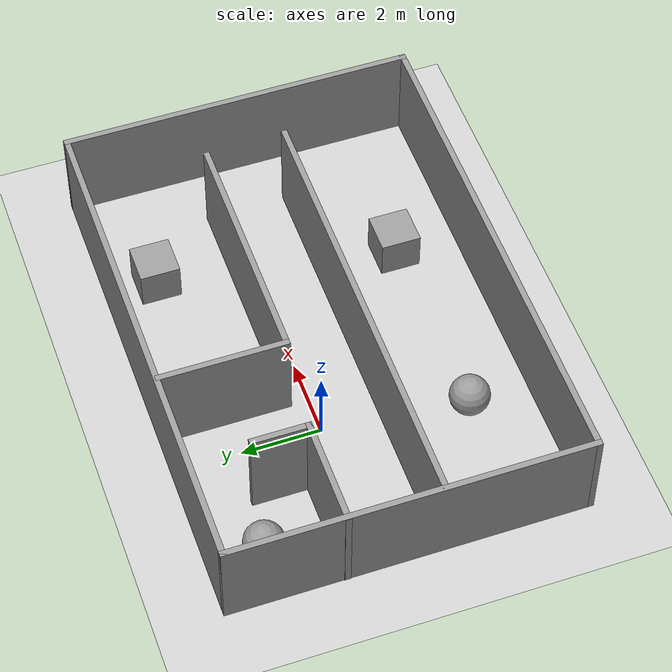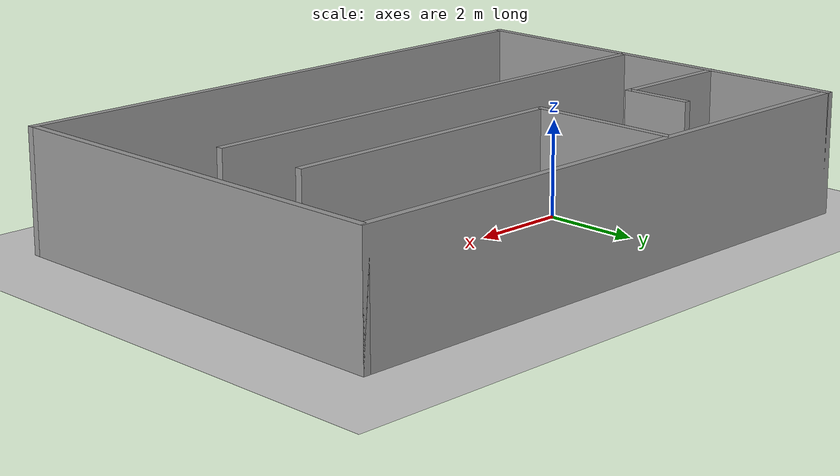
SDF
<sdf version="1.7">
 <world name="default">
  <light name="sun" type="directional">
   <pose>0 0 10 0 -0 0</pose>
   <diffuse>0.8 0.8 0.8 1</diffuse>
   <specular>0.2 0.2 0.2 1</specular>
   <attenuation>
    <range>1000</range>
    <constant>0.9</constant>
    <linear>0.01</linear>
    <quadratic>0.001</quadratic>
   </attenuation>
   <direction>-0.5 0.1 -0.9</direction>
   <spot><inner_angle>0</inner_angle><outer_angle>0</outer_angle><falloff>0</falloff></spot>
  </light>
  <model name="ground_plane">
   <static>1</static>
   <link name="link">
    <collision name="collision">
     <geometry><plane><normal>0 0 1</normal><size>100 100</size></plane></geometry>
     <surface>
      <contact><collide_bitmask>65535</collide_bitmask></contact>
      <friction><ode><mu>100</mu><mu2>50</mu2></ode></friction>
     </surface>
    </collision>
    <visual name="visual">
     <cast_shadows>0</cast_shadows>
     <geometry><plane><normal>0 0 1</normal><size>100 100</size></plane></geometry>
     <material>
      <script><uri>file://media/materials/scripts/gazebo.material</uri><name>Gazebo/Grey</name></script>
     </material>
    </visual>
   </link>
  </model>
  <gravity>0 0 -9.8</gravity>
  <magnetic_field>6e-06 2.3e-05 -4.2e-05</magnetic_field>
  <atmosphere type="adiabatic"/>
  <physics type="ode">
   <max_step_size>0.001</max_step_size>
   <real_time_factor>1</real_time_factor>
   <real_time_update_rate>1000</real_time_update_rate>
  </physics>
  <scene><ambient>0.4 0.4 0.4 1</ambient><background>0.7 0.7 0.7 1</background><shadows>1</shadows></scene>
  <audio><device>default</device></audio>
  <spherical_coordinates>
   <surface_model>EARTH_WGS84</surface_model>
   <latitude_deg>0</latitude_deg>
   <longitude_deg>0</longitude_deg>
   <elevation>0</elevation>
   <heading_deg>0</heading_deg>
  </spherical_coordinates>
  <model name="room">
   <pose>2.30418 -0.768589 0 0 -0 0</pose>
   <link name="Wall_1">
    <collision name="Wall_1_Collision">
     <geometry><box><size>9 0.15 2.5</size></box></geometry>
     <pose>0 0 1.25 0 -0 0</pose>
    </collision>
    <visual name="Wall_1_Visual">
     <pose>0 0 1.25 0 -0 0</pose>
     <geometry><box><size>9 0.15 2.5</size></box></geometry>
     <material>
      <script><uri>file://media/materials/scripts/gazebo.material</uri><name>Gazebo/Grey</name></script>
      <ambient>1 1 1 1</ambient>
     </material>
     <meta><layer>0</layer></meta>
    </visual>
    <pose>-6.29407 -0 0 0 -0 1.5708</pose>
   </link>
   <link name="Wall_11">
    <collision name="Wall_11_Collision">
     <geometry><box><size>3.25 0.15 2.5</size></box></geometry>
     <pose>0 0 1.25 0 -0 0</pose>
    </collision>
    <visual name="Wall_11_Visual">
     <pose>0 0 1.25 0 -0 0</pose>
     <geometry><box><size>3.25 0.15 2.5</size></box></geometry>
     <material>
      <script><uri>file://media/materials/scripts/gazebo.material</uri><name>Gazebo/Grey</name></script>
      <ambient>1 1 1 1</ambient>
     </material>
     <meta><layer>0</layer></meta>
    </visual>
    <pose>-1.32989 2.82962 0 0 -0 -1.5708</pose>
   </link>
   <link name="Wall_12">
    <collision name="Wall_12_Collision">
     <geometry><box><size>6.25 0.15 2.5</size></box></geometry>
     <pose>0 0 1.25 0 -0 0</pose>
    </collision>
    <visual name="Wall_12_Visual">
     <pose>0 0 1.25 0 -0 0</pose>
     <geometry><box><size>6.25 0.15 2.5</size></box></geometry>
     <material>
      <script><uri>file://media/materials/scripts/gazebo.material</uri><name>Gazebo/Grey</name></script>
      <ambient>1 1 1 1</ambient>
     </material>
     <meta><layer>0</layer></meta>
    </visual>
    <pose>1.72011 1.27962 0 0 -0 0</pose>
   </link>
   <link name="Wall_2">
    <collision name="Wall_2_Collision">
     <geometry><box><size>12.75 0.15 2.5</size></box></geometry>
     <pose>0 0 1.25 0 -0 0</pose>
    </collision>
    <visual name="Wall_2_Visual">
     <pose>0 0 1.25 0 -0 0</pose>
     <geometry><box><size>12.75 0.15 2.5</size></box></geometry>
     <material>
      <script><uri>file://media/materials/scripts/gazebo.material</uri><name>Gazebo/Grey</name></script>
      <ambient>1 1 1 1</ambient>
     </material>
     <meta><layer>0</layer></meta>
    </visual>
    <pose>0.005929 4.425 0 0 -0 0</pose>
   </link>
   <link name="Wall_3">
    <collision name="Wall_3_Collision">
     <geometry><box><size>9 0.15 2.5</size></box></geometry>
     <pose>0 0 1.25 0 -0 0</pose>
    </collision>
    <visual name="Wall_3_Visual">
     <pose>0 0 1.25 0 -0 0</pose>
     <geometry><box><size>9 0.15 2.5</size></box></geometry>
     <material>
      <script><uri>file://media/materials/scripts/gazebo.material</uri><name>Gazebo/Grey</name></script>
      <ambient>1 1 1 1</ambient>
     </material>
     <meta><layer>0</layer></meta>
    </visual>
    <pose>6.30593 -0 0 0 -0 -1.5708</pose>
   </link>
   <link name="Wall_4">
    <collision name="Wall_4_Collision">
     <geometry><box><size>12.75 0.15 2.5</size></box></geometry>
     <pose>0 0 1.25 0 -0 0</pose>
    </collision>
    <visual name="Wall_4_Visual">
     <pose>0 0 1.25 0 -0 0</pose>
     <geometry><box><size>12.75 0.15 2.5</size></box></geometry>
     <material>
      <script><uri>file://media/materials/scripts/gazebo.material</uri><name>Gazebo/Grey</name></script>
      <ambient>1 1 1 1</ambient>
     </material>
     <meta><layer>0</layer></meta>
    </visual>
    <pose>0.005929 -4.425 0 0 -0 3.14159</pose>
   </link>
   <link name="Wall_6">
    <collision name="Wall_6_Collision">
     <geometry><box><size>2.75 0.15 2.5</size></box></geometry>
     <pose>0 0 1.25 0 -0 0</pose>
    </collision>
    <visual name="Wall_6_Visual">
     <pose>0 0 1.25 0 -0 0</pose>
     <geometry><box><size>2.75 0.15 2.5</size></box></geometry>
     <material>
      <script><uri>file://media/materials/scripts/gazebo.material</uri><name>Gazebo/Grey</name></script>
      <ambient>1 1 1 1</ambient>
     </material>
     <meta><layer>0</layer></meta>
    </visual>
    <pose>-5.00593 1.54773 0 0 -0 0</pose>
   </link>
   <link name="Wall_7">
    <collision name="Wall_7_Collision">
     <geometry><box><size>1.5 0.15 2.5</size></box></geometry>
     <pose>0 0 1.25 0 -0 0</pose>
    </collision>
    <visual name="Wall_7_Visual">
     <pose>0 0 1.25 0 -0 0</pose>
     <geometry><box><size>1.5 0.15 2.5</size></box></geometry>
     <material>
      <script><uri>file://media/materials/scripts/gazebo.material</uri><name>Gazebo/Grey</name></script>
      <ambient>1 1 1 1</ambient>
     </material>
     <meta><layer>0</layer></meta>
    </visual>
    <pose>-3.70593 2.22273 0 0 -0 1.5708</pose>
   </link>
   <link name="Wall_9">
    <collision name="Wall_9_Collision">
     <geometry><box><size>11.25 0.15 2.5</size></box></geometry>
     <pose>0 0 1.25 0 -0 0</pose>
    </collision>
    <visual name="Wall_9_Visual">
     <pose>0 0 1.25 0 -0 0</pose>
     <geometry><box><size>11.25 0.15 2.5</size></box></geometry>
     <material>
      <script><uri>file://media/materials/scripts/gazebo.material</uri><name>Gazebo/Grey</name></script>
      <ambient>1 1 1 1</ambient>
     </material>
     <meta><layer>0</layer></meta>
    </visual>
    <pose>-0.715474 -0.758235 0 0 -0 0</pose>
   </link>
   <static>1</static>
  </model>
  <model name="unit_box">
   <pose>5.5246 2.41304 0.5 0 -0 0</pose>
   <link name="link">
    <inertial>
     <mass>1</mass>
     <inertia>
      <ixx>0.166667</ixx>
      <ixy>0</ixy>
      <ixz>0</ixz>
      <iyy>0.166667</iyy>
      <iyz>0</iyz>
      <izz>0.166667</izz>
     </inertia>
    </inertial>
    <collision name="collision"><geometry><box><size>1 1 1</size></box></geometry></collision>
    <visual name="visual">
     <geometry><box><size>1 1 1</size></box></geometry>
     <material>
      <script><name>Gazebo/Grey</name><uri>file://media/materials/scripts/gazebo.material</uri></script>
     </material>
    </visual>
   </link>
  </model>
  <model name="unit_box_0">
   <pose>4.50858 -3.49256 0.5 0 -0 0</pose>
   <link name="link">
    <inertial>
     <mass>1</mass>
     <inertia>
      <ixx>0.166667</ixx>
      <ixy>0</ixy>
      <ixz>0</ixz>
      <iyy>0.166667</iyy>
      <iyz>0</iyz>
      <izz>0.166667</izz>
     </inertia>
    </inertial>
    <collision name="collision"><geometry><box><size>1 1 1</size></box></geometry></collision>
    <visual name="visual">
     <geometry><box><size>1 1 1</size></box></geometry>
     <material>
      <script><name>Gazebo/Grey</name><uri>file://media/materials/scripts/gazebo.material</uri></script>
     </material>
    </visual>
   </link>
  </model>
  <model name="unit_sphere">
   <pose>-2.79405 2.34954 0.5 0 -0 0</pose>
   <link name="link">
    <inertial>
     <mass>1</mass>
     <inertia><ixx>0.1</ixx><ixy>0</ixy><ixz>0</ixz><iyy>0.1</iyy><iyz>0</iyz><izz>0.1</izz></inertia>
    </inertial>
    <collision name="collision"><geometry><sphere><radius>0.5</radius></sphere></geometry></collision>
    <visual name="visual">
     <geometry><sphere><radius>0.5</radius></sphere></geometry>
     <material>
      <script><name>Gazebo/Grey</name><uri>file://media/materials/scripts/gazebo.material</uri></script>
     </material>
    </visual>
   </link>
  </model>
  <model name="unit_sphere_0">
   <pose>-0.50801 -3.55606 0.5 0 -0 0</pose>
   <link name="link">
    <inertial>
     <mass>1</mass>
     <inertia><ixx>0.1</ixx><ixy>0</ixy><ixz>0</ixz><iyy>0.1</iyy><iyz>0</iyz><izz>0.1</izz></inertia>
    </inertial>
    <collision name="collision"><geometry><sphere><radius>0.5</radius></sphere></geometry></collision>
    <visual name="visual">
     <geometry><sphere><radius>0.5</radius></sphere></geometry>
     <material>
      <script><name>Gazebo/Grey</name><uri>file://media/materials/scripts/gazebo.material</uri></script>
     </material>
    </visual>
   </link>
  </model>
 </world>
</sdf>
